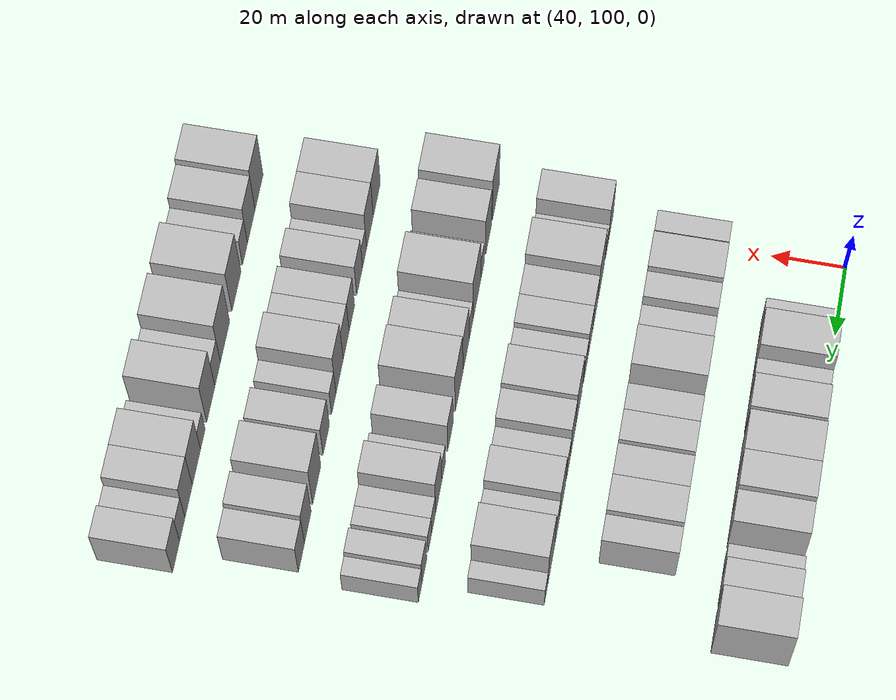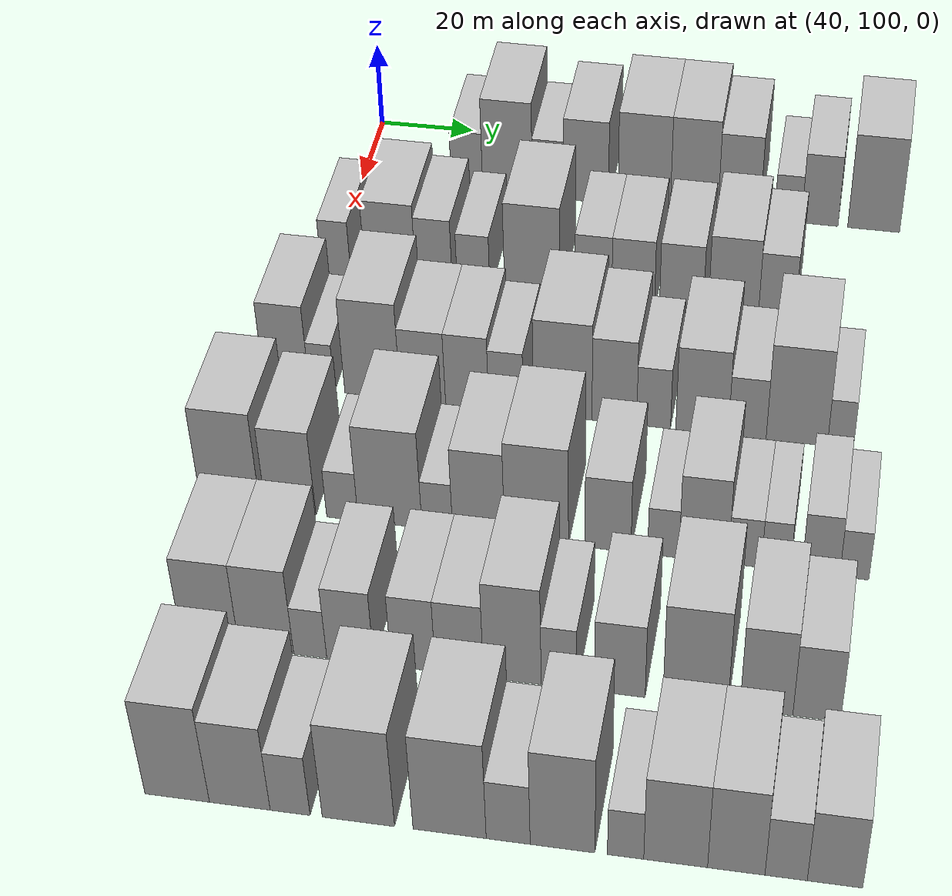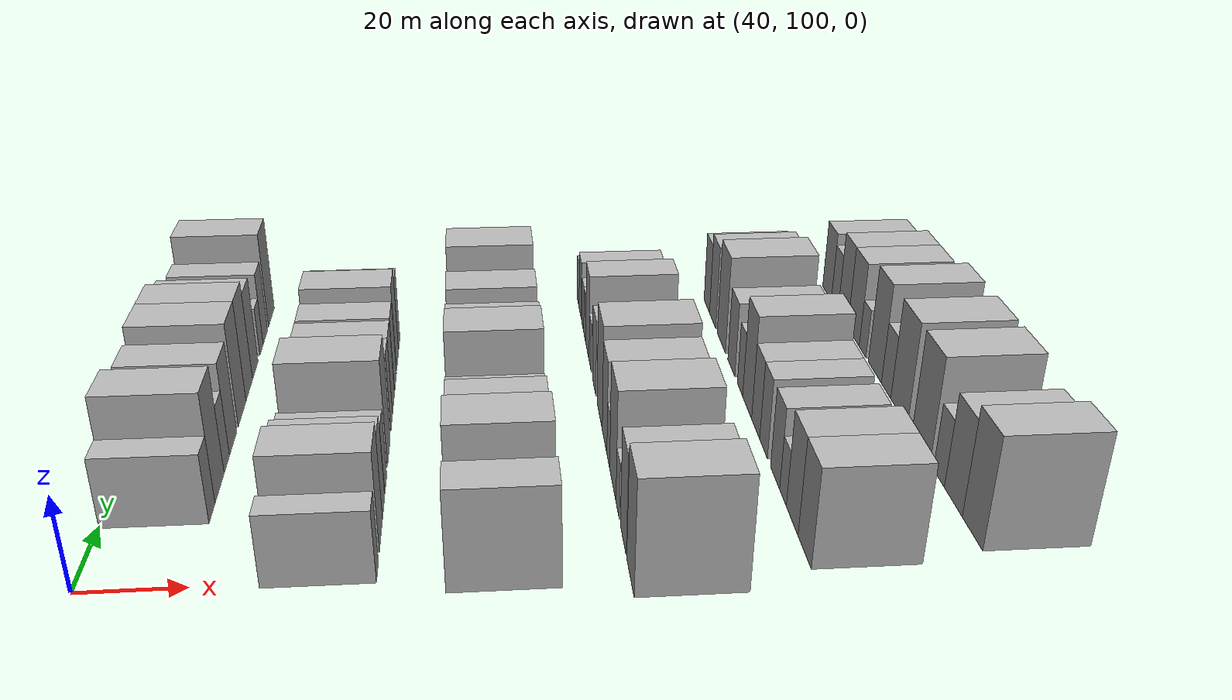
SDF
<sdf version="1.6">
 <world name="default">
  <model name="building_68">
   <static>1</static>
   <pose>50.0000 122.5129 0 0.000000 0.000000 0.000000</pose>
   <link name="link">
    <pose>0 0 7.50 0 0 0</pose>
    <collision name="collision"><geometry><box><size>20.0000 6.6788 15.0000</size></box></geometry></collision>
    <visual name="visual">
     <cast_shadows>0</cast_shadows>
     <geometry><box><size>20.0000 6.6788 15.0000</size></box></geometry>
     <material>
      <script>
       <uri>model://HANNAS_wall/materials/scripts</uri>
       <uri>model://HANNAS_wall/materials/textures</uri>
       <name>vrc/HANNAS_wall</name>
      </script>
     </material>
    </visual>
   </link>
  </model>
  <model name="building_69">
   <static>1</static>
   <pose>50.0000 131.1446 0 0.000000 0.000000 0.000000</pose>
   <link name="link">
    <pose>0 0 12.00 0 0 0</pose>
    <collision name="collision"><geometry><box><size>20.0000 10.5846 24.0000</size></box></geometry></collision>
    <visual name="visual">
     <cast_shadows>0</cast_shadows>
     <geometry><box><size>20.0000 10.5846 24.0000</size></box></geometry>
     <material>
      <script>
       <uri>model://HANNAS_wall/materials/scripts</uri>
       <uri>model://HANNAS_wall/materials/textures</uri>
       <name>vrc/HANNAS_wall</name>
      </script>
     </material>
    </visual>
   </link>
  </model>
  <model name="building_70">
   <static>1</static>
   <pose>50.0000 139.7589 0 0.000000 0.000000 0.000000</pose>
   <link name="link">
    <pose>0 0 7.50 0 0 0</pose>
    <collision name="collision"><geometry><box><size>20.0000 6.6439 15.0000</size></box></geometry></collision>
    <visual name="visual">
     <cast_shadows>0</cast_shadows>
     <geometry><box><size>20.0000 6.6439 15.0000</size></box></geometry>
     <material>
      <script>
       <uri>model://HANNAS_wall/materials/scripts</uri>
       <uri>model://HANNAS_wall/materials/textures</uri>
       <name>vrc/HANNAS_wall</name>
      </script>
     </material>
    </visual>
   </link>
  </model>
  <model name="building_71">
   <static>1</static>
   <pose>50.0000 147.8025 0 0.000000 0.000000 0.000000</pose>
   <link name="link">
    <pose>0 0 10.50 0 0 0</pose>
    <collision name="collision"><geometry><box><size>20.0000 9.4435 21.0000</size></box></geometry></collision>
    <visual name="visual">
     <cast_shadows>0</cast_shadows>
     <geometry><box><size>20.0000 9.4435 21.0000</size></box></geometry>
     <material>
      <script>
       <uri>model://HANNAS_wall/materials/scripts</uri>
       <uri>model://HANNAS_wall/materials/textures</uri>
       <name>vrc/HANNAS_wall</name>
      </script>
     </material>
    </visual>
   </link>
  </model>
  <model name="building_72">
   <static>1</static>
   <pose>50.0000 160.0196 0 0.000000 0.000000 0.000000</pose>
   <link name="link">
    <pose>0 0 12.00 0 0 0</pose>
    <collision name="collision"><geometry><box><size>20.0000 10.9906 24.0000</size></box></geometry></collision>
    <visual name="visual">
     <cast_shadows>0</cast_shadows>
     <geometry><box><size>20.0000 10.9906 24.0000</size></box></geometry>
     <material>
      <script>
       <uri>model://HANNAS_wall/materials/scripts</uri>
       <uri>model://HANNAS_wall/materials/textures</uri>
       <name>vrc/HANNAS_wall</name>
      </script>
     </material>
    </visual>
   </link>
  </model>
  <model name="building_73">
   <static>1</static>
   <pose>50.0000 170.4975 0 0.000000 0.000000 0.000000</pose>
   <link name="link">
    <pose>0 0 12.00 0 0 0</pose>
    <collision name="collision"><geometry><box><size>20.0000 9.9652 24.0000</size></box></geometry></collision>
    <visual name="visual">
     <cast_shadows>0</cast_shadows>
     <geometry><box><size>20.0000 9.9652 24.0000</size></box></geometry>
     <material>
      <script>
       <uri>model://HANNAS_wall/materials/scripts</uri>
       <uri>model://HANNAS_wall/materials/textures</uri>
       <name>vrc/HANNAS_wall</name>
      </script>
     </material>
    </visual>
   </link>
  </model>
  <model name="building_74">
   <static>1</static>
   <pose>50.0000 179.8520 0 0.000000 0.000000 0.000000</pose>
   <link name="link">
    <pose>0 0 10.50 0 0 0</pose>
    <collision name="collision"><geometry><box><size>20.0000 8.7438 21.0000</size></box></geometry></collision>
    <visual name="visual">
     <cast_shadows>0</cast_shadows>
     <geometry><box><size>20.0000 8.7438 21.0000</size></box></geometry>
     <material>
      <script>
       <uri>model://HANNAS_wall/materials/scripts</uri>
       <uri>model://HANNAS_wall/materials/textures</uri>
       <name>vrc/HANNAS_wall</name>
      </script>
     </material>
    </visual>
   </link>
  </model>
  <model name="building_75">
   <static>1</static>
   <pose>50.0000 190.0340 0 0.000000 0.000000 0.000000</pose>
   <link name="link">
    <pose>0 0 6.00 0 0 0</pose>
    <collision name="collision"><geometry><box><size>20.0000 5.6203 12.0000</size></box></geometry></collision>
    <visual name="visual">
     <cast_shadows>0</cast_shadows>
     <geometry><box><size>20.0000 5.6203 12.0000</size></box></geometry>
     <material>
      <script>
       <uri>model://HANNAS_wall/materials/scripts</uri>
       <uri>model://HANNAS_wall/materials/textures</uri>
       <name>vrc/HANNAS_wall</name>
      </script>
     </material>
    </visual>
   </link>
  </model>
  <model name="building_76">
   <static>1</static>
   <pose>50.0000 196.6238 0 0.000000 0.000000 0.000000</pose>
   <link name="link">
    <pose>0 0 9.00 0 0 0</pose>
    <collision name="collision"><geometry><box><size>20.0000 7.5592 18.0000</size></box></geometry></collision>
    <visual name="visual">
     <cast_shadows>0</cast_shadows>
     <geometry><box><size>20.0000 7.5592 18.0000</size></box></geometry>
     <material>
      <script>
       <uri>model://HANNAS_wall/materials/scripts</uri>
       <uri>model://HANNAS_wall/materials/textures</uri>
       <name>vrc/HANNAS_wall</name>
      </script>
     </material>
    </visual>
   </link>
  </model>
  <model name="building_77">
   <static>1</static>
   <pose>50.0000 207.7444 0 0.000000 0.000000 0.000000</pose>
   <link name="link">
    <pose>0 0 12.00 0 0 0</pose>
    <collision name="collision"><geometry><box><size>20.0000 10.6820 24.0000</size></box></geometry></collision>
    <visual name="visual">
     <cast_shadows>0</cast_shadows>
     <geometry><box><size>20.0000 10.6820 24.0000</size></box></geometry>
     <material>
      <script>
       <uri>model://HANNAS_wall/materials/scripts</uri>
       <uri>model://HANNAS_wall/materials/textures</uri>
       <name>vrc/HANNAS_wall</name>
      </script>
     </material>
    </visual>
   </link>
  </model>
  <model name="building_185">
   <static>1</static>
   <pose>82.0000 101.9306 0 0.000000 0.000000 0.000000</pose>
   <link name="link">
    <pose>0 0 7.50 0 0 0</pose>
    <collision name="collision"><geometry><box><size>20.0000 6.0128 15.0000</size></box></geometry></collision>
    <visual name="visual">
     <cast_shadows>0</cast_shadows>
     <geometry><box><size>20.0000 6.0128 15.0000</size></box></geometry>
     <material>
      <script>
       <uri>model://HANNAS_wall/materials/scripts</uri>
       <uri>model://HANNAS_wall/materials/textures</uri>
       <name>vrc/HANNAS_wall</name>
      </script>
     </material>
    </visual>
   </link>
  </model>
  <model name="building_186">
   <static>1</static>
   <pose>82.0000 113.1145 0 0.000000 0.000000 0.000000</pose>
   <link name="link">
    <pose>0 0 10.50 0 0 0</pose>
    <collision name="collision"><geometry><box><size>20.0000 10.3550 21.0000</size></box></geometry></collision>
    <visual name="visual">
     <cast_shadows>0</cast_shadows>
     <geometry><box><size>20.0000 10.3550 21.0000</size></box></geometry>
     <material>
      <script>
       <uri>model://HANNAS_wall/materials/scripts</uri>
       <uri>model://HANNAS_wall/materials/textures</uri>
       <name>vrc/HANNAS_wall</name>
      </script>
     </material>
    </visual>
   </link>
  </model>
  <model name="building_187">
   <static>1</static>
   <pose>82.0000 121.9888 0 0.000000 0.000000 0.000000</pose>
   <link name="link">
    <pose>0 0 9.00 0 0 0</pose>
    <collision name="collision"><geometry><box><size>20.0000 7.3936 18.0000</size></box></geometry></collision>
    <visual name="visual">
     <cast_shadows>0</cast_shadows>
     <geometry><box><size>20.0000 7.3936 18.0000</size></box></geometry>
     <material>
      <script>
       <uri>model://HANNAS_wall/materials/scripts</uri>
       <uri>model://HANNAS_wall/materials/textures</uri>
       <name>vrc/HANNAS_wall</name>
      </script>
     </material>
    </visual>
   </link>
  </model>
  <model name="building_188">
   <static>1</static>
   <pose>82.0000 129.9867 0 0.000000 0.000000 0.000000</pose>
   <link name="link">
    <pose>0 0 7.50 0 0 0</pose>
    <collision name="collision"><geometry><box><size>20.0000 6.6022 15.0000</size></box></geometry></collision>
    <visual name="visual">
     <cast_shadows>0</cast_shadows>
     <geometry><box><size>20.0000 6.6022 15.0000</size></box></geometry>
     <material>
      <script>
       <uri>model://HANNAS_wall/materials/scripts</uri>
       <uri>model://HANNAS_wall/materials/textures</uri>
       <name>vrc/HANNAS_wall</name>
      </script>
     </material>
    </visual>
   </link>
  </model>
  <model name="building_189">
   <static>1</static>
   <pose>82.0000 141.8867 0 0.000000 0.000000 0.000000</pose>
   <link name="link">
    <pose>0 0 12.00 0 0 0</pose>
    <collision name="collision"><geometry><box><size>20.0000 11.1978 24.0000</size></box></geometry></collision>
    <visual name="visual">
     <cast_shadows>0</cast_shadows>
     <geometry><box><size>20.0000 11.1978 24.0000</size></box></geometry>
     <material>
      <script>
       <uri>model://HANNAS_wall/materials/scripts</uri>
       <uri>model://HANNAS_wall/materials/textures</uri>
       <name>vrc/HANNAS_wall</name>
      </script>
     </material>
    </visual>
   </link>
  </model>
  <model name="building_190">
   <static>1</static>
   <pose>82.0000 154.1636 0 0.000000 0.000000 0.000000</pose>
   <link name="link">
    <pose>0 0 9.00 0 0 0</pose>
    <collision name="collision"><geometry><box><size>20.0000 7.3559 18.0000</size></box></geometry></collision>
    <visual name="visual">
     <cast_shadows>0</cast_shadows>
     <geometry><box><size>20.0000 7.3559 18.0000</size></box></geometry>
     <material>
      <script>
       <uri>model://HANNAS_wall/materials/scripts</uri>
       <uri>model://HANNAS_wall/materials/textures</uri>
       <name>vrc/HANNAS_wall</name>
      </script>
     </material>
    </visual>
   </link>
  </model>
  <model name="building_191">
   <static>1</static>
   <pose>82.0000 162.1044 0 0.000000 0.000000 0.000000</pose>
   <link name="link">
    <pose>0 0 9.00 0 0 0</pose>
    <collision name="collision"><geometry><box><size>20.0000 8.5257 18.0000</size></box></geometry></collision>
    <visual name="visual">
     <cast_shadows>0</cast_shadows>
     <geometry><box><size>20.0000 8.5257 18.0000</size></box></geometry>
     <material>
      <script>
       <uri>model://HANNAS_wall/materials/scripts</uri>
       <uri>model://HANNAS_wall/materials/textures</uri>
       <name>vrc/HANNAS_wall</name>
      </script>
     </material>
    </visual>
   </link>
  </model>
  <model name="building_192">
   <static>1</static>
   <pose>82.0000 171.7110 0 0.000000 0.000000 0.000000</pose>
   <link name="link">
    <pose>0 0 9.00 0 0 0</pose>
    <collision name="collision"><geometry><box><size>20.0000 8.6875 18.0000</size></box></geometry></collision>
    <visual name="visual">
     <cast_shadows>0</cast_shadows>
     <geometry><box><size>20.0000 8.6875 18.0000</size></box></geometry>
     <material>
      <script>
       <uri>model://HANNAS_wall/materials/scripts</uri>
       <uri>model://HANNAS_wall/materials/textures</uri>
       <name>vrc/HANNAS_wall</name>
      </script>
     </material>
    </visual>
   </link>
  </model>
  <model name="building_193">
   <static>1</static>
   <pose>82.0000 182.0036 0 0.000000 0.000000 0.000000</pose>
   <link name="link">
    <pose>0 0 10.50 0 0 0</pose>
    <collision name="collision"><geometry><box><size>20.0000 9.8978 21.0000</size></box></geometry></collision>
    <visual name="visual">
     <cast_shadows>0</cast_shadows>
     <geometry><box><size>20.0000 9.8978 21.0000</size></box></geometry>
     <material>
      <script>
       <uri>model://HANNAS_wall/materials/scripts</uri>
       <uri>model://HANNAS_wall/materials/textures</uri>
       <name>vrc/HANNAS_wall</name>
      </script>
     </material>
    </visual>
   </link>
  </model>
  <model name="building_194">
   <static>1</static>
   <pose>82.0000 190.5647 0 0.000000 0.000000 0.000000</pose>
   <link name="link">
    <pose>0 0 9.00 0 0 0</pose>
    <collision name="collision"><geometry><box><size>20.0000 7.2244 18.0000</size></box></geometry></collision>
    <visual name="visual">
     <cast_shadows>0</cast_shadows>
     <geometry><box><size>20.0000 7.2244 18.0000</size></box></geometry>
     <material>
      <script>
       <uri>model://HANNAS_wall/materials/scripts</uri>
       <uri>model://HANNAS_wall/materials/textures</uri>
       <name>vrc/HANNAS_wall</name>
      </script>
     </material>
    </visual>
   </link>
  </model>
  <model name="building_301">
   <static>1</static>
   <pose>114.0000 99.6514 0 0.000000 0.000000 0.000000</pose>
   <link name="link">
    <pose>0 0 10.50 0 0 0</pose>
    <collision name="collision"><geometry><box><size>20.0000 8.8921 21.0000</size></box></geometry></collision>
    <visual name="visual">
     <cast_shadows>0</cast_shadows>
     <geometry><box><size>20.0000 8.8921 21.0000</size></box></geometry>
     <material>
      <script>
       <uri>model://HANNAS_wall/materials/scripts</uri>
       <uri>model://HANNAS_wall/materials/textures</uri>
       <name>vrc/HANNAS_wall</name>
      </script>
     </material>
    </visual>
   </link>
  </model>
  <model name="building_302">
   <static>1</static>
   <pose>114.0000 106.5585 0 0.000000 0.000000 0.000000</pose>
   <link name="link">
    <pose>0 0 6.00 0 0 0</pose>
    <collision name="collision"><geometry><box><size>20.0000 4.9220 12.0000</size></box></geometry></collision>
    <visual name="visual">
     <cast_shadows>0</cast_shadows>
     <geometry><box><size>20.0000 4.9220 12.0000</size></box></geometry>
     <material>
      <script>
       <uri>model://HANNAS_wall/materials/scripts</uri>
       <uri>model://HANNAS_wall/materials/textures</uri>
       <name>vrc/HANNAS_wall</name>
      </script>
     </material>
    </visual>
   </link>
  </model>
  <model name="building_303">
   <static>1</static>
   <pose>114.0000 116.4418 0 0.000000 0.000000 0.000000</pose>
   <link name="link">
    <pose>0 0 12.00 0 0 0</pose>
    <collision name="collision"><geometry><box><size>20.0000 10.8446 24.0000</size></box></geometry></collision>
    <visual name="visual">
     <cast_shadows>0</cast_shadows>
     <geometry><box><size>20.0000 10.8446 24.0000</size></box></geometry>
     <material>
      <script>
       <uri>model://HANNAS_wall/materials/scripts</uri>
       <uri>model://HANNAS_wall/materials/textures</uri>
       <name>vrc/HANNAS_wall</name>
      </script>
     </material>
    </visual>
   </link>
  </model>
  <model name="building_304">
   <static>1</static>
   <pose>114.0000 126.2384 0 0.000000 0.000000 0.000000</pose>
   <link name="link">
    <pose>0 0 9.00 0 0 0</pose>
    <collision name="collision"><geometry><box><size>20.0000 8.7486 18.0000</size></box></geometry></collision>
    <visual name="visual">
     <cast_shadows>0</cast_shadows>
     <geometry><box><size>20.0000 8.7486 18.0000</size></box></geometry>
     <material>
      <script>
       <uri>model://HANNAS_wall/materials/scripts</uri>
       <uri>model://HANNAS_wall/materials/textures</uri>
       <name>vrc/HANNAS_wall</name>
      </script>
     </material>
    </visual>
   </link>
  </model>
  <model name="building_305">
   <static>1</static>
   <pose>114.0000 134.7774 0 0.000000 0.000000 0.000000</pose>
   <link name="link">
    <pose>0 0 9.00 0 0 0</pose>
    <collision name="collision"><geometry><box><size>20.0000 8.3294 18.0000</size></box></geometry></collision>
    <visual name="visual">
     <cast_shadows>0</cast_shadows>
     <geometry><box><size>20.0000 8.3294 18.0000</size></box></geometry>
     <material>
      <script>
       <uri>model://HANNAS_wall/materials/scripts</uri>
       <uri>model://HANNAS_wall/materials/textures</uri>
       <name>vrc/HANNAS_wall</name>
      </script>
     </material>
    </visual>
   </link>
  </model>
  <model name="building_306">
   <static>1</static>
   <pose>114.0000 142.2722 0 0.000000 0.000000 0.000000</pose>
   <link name="link">
    <pose>0 0 7.50 0 0 0</pose>
    <collision name="collision"><geometry><box><size>20.0000 6.6601 15.0000</size></box></geometry></collision>
    <visual name="visual">
     <cast_shadows>0</cast_shadows>
     <geometry><box><size>20.0000 6.6601 15.0000</size></box></geometry>
     <material>
      <script>
       <uri>model://HANNAS_wall/materials/scripts</uri>
       <uri>model://HANNAS_wall/materials/textures</uri>
       <name>vrc/HANNAS_wall</name>
      </script>
     </material>
    </visual>
   </link>
  </model>
  <model name="building_307">
   <static>1</static>
   <pose>114.0000 153.1682 0 0.000000 0.000000 0.000000</pose>
   <link name="link">
    <pose>0 0 12.00 0 0 0</pose>
    <collision name="collision"><geometry><box><size>20.0000 11.1320 24.0000</size></box></geometry></collision>
    <visual name="visual">
     <cast_shadows>0</cast_shadows>
     <geometry><box><size>20.0000 11.1320 24.0000</size></box></geometry>
     <material>
      <script>
       <uri>model://HANNAS_wall/materials/scripts</uri>
       <uri>model://HANNAS_wall/materials/textures</uri>
       <name>vrc/HANNAS_wall</name>
      </script>
     </material>
    </visual>
   </link>
  </model>
  <model name="building_308">
   <static>1</static>
   <pose>114.0000 162.9827 0 0.000000 0.000000 0.000000</pose>
   <link name="link">
    <pose>0 0 10.50 0 0 0</pose>
    <collision name="collision"><geometry><box><size>20.0000 8.4970 21.0000</size></box></geometry></collision>
    <visual name="visual">
     <cast_shadows>0</cast_shadows>
     <geometry><box><size>20.0000 8.4970 21.0000</size></box></geometry>
     <material>
      <script>
       <uri>model://HANNAS_wall/materials/scripts</uri>
       <uri>model://HANNAS_wall/materials/textures</uri>
       <name>vrc/HANNAS_wall</name>
      </script>
     </material>
    </visual>
   </link>
  </model>
  <model name="building_309">
   <static>1</static>
   <pose>114.0000 170.4373 0 0.000000 0.000000 0.000000</pose>
   <link name="link">
    <pose>0 0 7.50 0 0 0</pose>
    <collision name="collision"><geometry><box><size>20.0000 6.4121 15.0000</size></box></geometry></collision>
    <visual name="visual">
     <cast_shadows>0</cast_shadows>
     <geometry><box><size>20.0000 6.4121 15.0000</size></box></geometry>
     <material>
      <script>
       <uri>model://HANNAS_wall/materials/scripts</uri>
       <uri>model://HANNAS_wall/materials/textures</uri>
       <name>vrc/HANNAS_wall</name>
      </script>
     </material>
    </visual>
   </link>
  </model>
  <model name="building_310">
   <static>1</static>
   <pose>114.0000 179.6038 0 0.000000 0.000000 0.000000</pose>
   <link name="link">
    <pose>0 0 10.50 0 0 0</pose>
    <collision name="collision"><geometry><box><size>20.0000 9.9211 21.0000</size></box></geometry></collision>
    <visual name="visual">
     <cast_shadows>0</cast_shadows>
     <geometry><box><size>20.0000 9.9211 21.0000</size></box></geometry>
     <material>
      <script>
       <uri>model://HANNAS_wall/materials/scripts</uri>
       <uri>model://HANNAS_wall/materials/textures</uri>
       <name>vrc/HANNAS_wall</name>
      </script>
     </material>
    </visual>
   </link>
  </model>
  <model name="building_311">
   <static>1</static>
   <pose>114.0000 188.1128 0 0.000000 0.000000 0.000000</pose>
   <link name="link">
    <pose>0 0 7.50 0 0 0</pose>
    <collision name="collision"><geometry><box><size>20.0000 7.0968 15.0000</size></box></geometry></collision>
    <visual name="visual">
     <cast_shadows>0</cast_shadows>
     <geometry><box><size>20.0000 7.0968 15.0000</size></box></geometry>
     <material>
      <script>
       <uri>model://HANNAS_wall/materials/scripts</uri>
       <uri>model://HANNAS_wall/materials/textures</uri>
       <name>vrc/HANNAS_wall</name>
      </script>
     </material>
    </visual>
   </link>
  </model>
  <model name="building_312">
   <static>1</static>
   <pose>114.0000 197.3882 0 0.000000 0.000000 0.000000</pose>
   <link name="link">
    <pose>0 0 12.00 0 0 0</pose>
    <collision name="collision"><geometry><box><size>20.0000 11.4542 24.0000</size></box></geometry></collision>
    <visual name="visual">
     <cast_shadows>0</cast_shadows>
     <geometry><box><size>20.0000 11.4542 24.0000</size></box></geometry>
     <material>
      <script>
       <uri>model://HANNAS_wall/materials/scripts</uri>
       <uri>model://HANNAS_wall/materials/textures</uri>
       <name>vrc/HANNAS_wall</name>
      </script>
     </material>
    </visual>
   </link>
  </model>
  <model name="building_313">
   <static>1</static>
   <pose>114.0000 205.5352 0 0.000000 0.000000 0.000000</pose>
   <link name="link">
    <pose>0 0 6.00 0 0 0</pose>
    <collision name="collision"><geometry><box><size>20.0000 4.8397 12.0000</size></box></geometry></collision>
    <visual name="visual">
     <cast_shadows>0</cast_shadows>
     <geometry><box><size>20.0000 4.8397 12.0000</size></box></geometry>
     <material>
      <script>
       <uri>model://HANNAS_wall/materials/scripts</uri>
       <uri>model://HANNAS_wall/materials/textures</uri>
       <name>vrc/HANNAS_wall</name>
      </script>
     </material>
    </visual>
   </link>
  </model>
  <model name="building_416">
   <static>1</static>
   <pose>146.0000 97.1462 0 0.000000 0.000000 0.000000</pose>
   <link name="link">
    <pose>0 0 12.00 0 0 0</pose>
    <collision name="collision"><geometry><box><size>20.0000 11.1856 24.0000</size></box></geometry></collision>
    <visual name="visual">
     <cast_shadows>0</cast_shadows>
     <geometry><box><size>20.0000 11.1856 24.0000</size></box></geometry>
     <material>
      <script>
       <uri>model://HANNAS_wall/materials/scripts</uri>
       <uri>model://HANNAS_wall/materials/textures</uri>
       <name>vrc/HANNAS_wall</name>
      </script>
     </material>
    </visual>
   </link>
  </model>
  <model name="building_417">
   <static>1</static>
   <pose>146.0000 108.4073 0 0.000000 0.000000 0.000000</pose>
   <link name="link">
    <pose>0 0 10.50 0 0 0</pose>
    <collision name="collision"><geometry><box><size>20.0000 9.3366 21.0000</size></box></geometry></collision>
    <visual name="visual">
     <cast_shadows>0</cast_shadows>
     <geometry><box><size>20.0000 9.3366 21.0000</size></box></geometry>
     <material>
      <script>
       <uri>model://HANNAS_wall/materials/scripts</uri>
       <uri>model://HANNAS_wall/materials/textures</uri>
       <name>vrc/HANNAS_wall</name>
      </script>
     </material>
    </visual>
   </link>
  </model>
  <model name="building_418">
   <static>1</static>
   <pose>146.0000 117.9862 0 0.000000 0.000000 0.000000</pose>
   <link name="link">
    <pose>0 0 6.00 0 0 0</pose>
    <collision name="collision"><geometry><box><size>20.0000 5.8212 12.0000</size></box></geometry></collision>
    <visual name="visual">
     <cast_shadows>0</cast_shadows>
     <geometry><box><size>20.0000 5.8212 12.0000</size></box></geometry>
     <material>
      <script>
       <uri>model://HANNAS_wall/materials/scripts</uri>
       <uri>model://HANNAS_wall/materials/textures</uri>
       <name>vrc/HANNAS_wall</name>
      </script>
     </material>
    </visual>
   </link>
  </model>
  <model name="building_419">
   <static>1</static>
   <pose>146.0000 126.7733 0 0.000000 0.000000 0.000000</pose>
   <link name="link">
    <pose>0 0 12.00 0 0 0</pose>
    <collision name="collision"><geometry><box><size>20.0000 11.7530 24.0000</size></box></geometry></collision>
    <visual name="visual">
     <cast_shadows>0</cast_shadows>
     <geometry><box><size>20.0000 11.7530 24.0000</size></box></geometry>
     <material>
      <script>
       <uri>model://HANNAS_wall/materials/scripts</uri>
       <uri>model://HANNAS_wall/materials/textures</uri>
       <name>vrc/HANNAS_wall</name>
      </script>
     </material>
    </visual>
   </link>
  </model>
  <model name="building_420">
   <static>1</static>
   <pose>146.0000 135.4573 0 0.000000 0.000000 0.000000</pose>
   <link name="link">
    <pose>0 0 6.00 0 0 0</pose>
    <collision name="collision"><geometry><box><size>20.0000 5.6151 12.0000</size></box></geometry></collision>
    <visual name="visual">
     <cast_shadows>0</cast_shadows>
     <geometry><box><size>20.0000 5.6151 12.0000</size></box></geometry>
     <material>
      <script>
       <uri>model://HANNAS_wall/materials/scripts</uri>
       <uri>model://HANNAS_wall/materials/textures</uri>
       <name>vrc/HANNAS_wall</name>
      </script>
     </material>
    </visual>
   </link>
  </model>
  <model name="building_421">
   <static>1</static>
   <pose>146.0000 142.9981 0 0.000000 0.000000 0.000000</pose>
   <link name="link">
    <pose>0 0 10.50 0 0 0</pose>
    <collision name="collision"><geometry><box><size>20.0000 9.4665 21.0000</size></box></geometry></collision>
    <visual name="visual">
     <cast_shadows>0</cast_shadows>
     <geometry><box><size>20.0000 9.4665 21.0000</size></box></geometry>
     <material>
      <script>
       <uri>model://HANNAS_wall/materials/scripts</uri>
       <uri>model://HANNAS_wall/materials/textures</uri>
       <name>vrc/HANNAS_wall</name>
      </script>
     </material>
    </visual>
   </link>
  </model>
  <model name="building_422">
   <static>1</static>
   <pose>146.0000 153.5278 0 0.000000 0.000000 0.000000</pose>
   <link name="link">
    <pose>0 0 12.00 0 0 0</pose>
    <collision name="collision"><geometry><box><size>20.0000 11.5928 24.0000</size></box></geometry></collision>
    <visual name="visual">
     <cast_shadows>0</cast_shadows>
     <geometry><box><size>20.0000 11.5928 24.0000</size></box></geometry>
     <material>
      <script>
       <uri>model://HANNAS_wall/materials/scripts</uri>
       <uri>model://HANNAS_wall/materials/textures</uri>
       <name>vrc/HANNAS_wall</name>
      </script>
     </material>
    </visual>
   </link>
  </model>
  <model name="building_423">
   <static>1</static>
   <pose>146.0000 166.4568 0 0.000000 0.000000 0.000000</pose>
   <link name="link">
    <pose>0 0 9.00 0 0 0</pose>
    <collision name="collision"><geometry><box><size>20.0000 8.2653 18.0000</size></box></geometry></collision>
    <visual name="visual">
     <cast_shadows>0</cast_shadows>
     <geometry><box><size>20.0000 8.2653 18.0000</size></box></geometry>
     <material>
      <script>
       <uri>model://HANNAS_wall/materials/scripts</uri>
       <uri>model://HANNAS_wall/materials/textures</uri>
       <name>vrc/HANNAS_wall</name>
      </script>
     </material>
    </visual>
   </link>
  </model>
  <model name="building_424">
   <static>1</static>
   <pose>146.0000 176.3901 0 0.000000 0.000000 0.000000</pose>
   <link name="link">
    <pose>0 0 6.00 0 0 0</pose>
    <collision name="collision"><geometry><box><size>20.0000 5.6015 12.0000</size></box></geometry></collision>
    <visual name="visual">
     <cast_shadows>0</cast_shadows>
     <geometry><box><size>20.0000 5.6015 12.0000</size></box></geometry>
     <material>
      <script>
       <uri>model://HANNAS_wall/materials/scripts</uri>
       <uri>model://HANNAS_wall/materials/textures</uri>
       <name>vrc/HANNAS_wall</name>
      </script>
     </material>
    </visual>
   </link>
  </model>
  <model name="building_425">
   <static>1</static>
   <pose>146.0000 183.6119 0 0.000000 0.000000 0.000000</pose>
   <link name="link">
    <pose>0 0 10.50 0 0 0</pose>
    <collision name="collision"><geometry><box><size>20.0000 8.8421 21.0000</size></box></geometry></collision>
    <visual name="visual">
     <cast_shadows>0</cast_shadows>
     <geometry><box><size>20.0000 8.8421 21.0000</size></box></geometry>
     <material>
      <script>
       <uri>model://HANNAS_wall/materials/scripts</uri>
       <uri>model://HANNAS_wall/materials/textures</uri>
       <name>vrc/HANNAS_wall</name>
      </script>
     </material>
    </visual>
   </link>
  </model>
  <model name="building_426">
   <static>1</static>
   <pose>146.0000 190.9628 0 0.000000 0.000000 0.000000</pose>
   <link name="link">
    <pose>0 0 6.00 0 0 0</pose>
    <collision name="collision"><geometry><box><size>20.0000 5.8597 12.0000</size></box></geometry></collision>
    <visual name="visual">
     <cast_shadows>0</cast_shadows>
     <geometry><box><size>20.0000 5.8597 12.0000</size></box></geometry>
     <material>
      <script>
       <uri>model://HANNAS_wall/materials/scripts</uri>
       <uri>model://HANNAS_wall/materials/textures</uri>
       <name>vrc/HANNAS_wall</name>
      </script>
     </material>
    </visual>
   </link>
  </model>
  <model name="building_427">
   <static>1</static>
   <pose>146.0000 196.4624 0 0.000000 0.000000 0.000000</pose>
   <link name="link">
    <pose>0 0 6.00 0 0 0</pose>
    <collision name="collision"><geometry><box><size>20.0000 5.1393 12.0000</size></box></geometry></collision>
    <visual name="visual">
     <cast_shadows>0</cast_shadows>
     <geometry><box><size>20.0000 5.1393 12.0000</size></box></geometry>
     <material>
      <script>
       <uri>model://HANNAS_wall/materials/scripts</uri>
       <uri>model://HANNAS_wall/materials/textures</uri>
       <name>vrc/HANNAS_wall</name>
      </script>
     </material>
    </visual>
   </link>
  </model>
  <model name="building_428">
   <static>1</static>
   <pose>146.0000 204.3752 0 0.000000 0.000000 0.000000</pose>
   <link name="link">
    <pose>0 0 7.50 0 0 0</pose>
    <collision name="collision"><geometry><box><size>20.0000 6.6863 15.0000</size></box></geometry></collision>
    <visual name="visual">
     <cast_shadows>0</cast_shadows>
     <geometry><box><size>20.0000 6.6863 15.0000</size></box></geometry>
     <material>
      <script>
       <uri>model://HANNAS_wall/materials/scripts</uri>
       <uri>model://HANNAS_wall/materials/textures</uri>
       <name>vrc/HANNAS_wall</name>
      </script>
     </material>
    </visual>
   </link>
  </model>
  <model name="building_429">
   <static>1</static>
   <pose>146.0000 210.2912 0 0.000000 0.000000 0.000000</pose>
   <link name="link">
    <pose>0 0 6.00 0 0 0</pose>
    <collision name="collision"><geometry><box><size>20.0000 5.1457 12.0000</size></box></geometry></collision>
    <visual name="visual">
     <cast_shadows>0</cast_shadows>
     <geometry><box><size>20.0000 5.1457 12.0000</size></box></geometry>
     <material>
      <script>
       <uri>model://HANNAS_wall/materials/scripts</uri>
       <uri>model://HANNAS_wall/materials/textures</uri>
       <name>vrc/HANNAS_wall</name>
      </script>
     </material>
    </visual>
   </link>
  </model>
  <model name="building_539">
   <static>1</static>
   <pose>178.0000 102.2089 0 0.000000 0.000000 0.000000</pose>
   <link name="link">
    <pose>0 0 10.50 0 0 0</pose>
    <collision name="collision"><geometry><box><size>20.0000 10.1452 21.0000</size></box></geometry></collision>
    <visual name="visual">
     <cast_shadows>0</cast_shadows>
     <geometry><box><size>20.0000 10.1452 21.0000</size></box></geometry>
     <material>
      <script>
       <uri>model://HANNAS_wall/materials/scripts</uri>
       <uri>model://HANNAS_wall/materials/textures</uri>
       <name>vrc/HANNAS_wall</name>
      </script>
     </material>
    </visual>
   </link>
  </model>
  <model name="building_540">
   <static>1</static>
   <pose>178.0000 112.0892 0 0.000000 0.000000 0.000000</pose>
   <link name="link">
    <pose>0 0 10.50 0 0 0</pose>
    <collision name="collision"><geometry><box><size>20.0000 9.6154 21.0000</size></box></geometry></collision>
    <visual name="visual">
     <cast_shadows>0</cast_shadows>
     <geometry><box><size>20.0000 9.6154 21.0000</size></box></geometry>
     <material>
      <script>
       <uri>model://HANNAS_wall/materials/scripts</uri>
       <uri>model://HANNAS_wall/materials/textures</uri>
       <name>vrc/HANNAS_wall</name>
      </script>
     </material>
    </visual>
   </link>
  </model>
  <model name="building_541">
   <static>1</static>
   <pose>178.0000 119.7937 0 0.000000 0.000000 0.000000</pose>
   <link name="link">
    <pose>0 0 6.00 0 0 0</pose>
    <collision name="collision"><geometry><box><size>20.0000 5.7937 12.0000</size></box></geometry></collision>
    <visual name="visual">
     <cast_shadows>0</cast_shadows>
     <geometry><box><size>20.0000 5.7937 12.0000</size></box></geometry>
     <material>
      <script>
       <uri>model://HANNAS_wall/materials/scripts</uri>
       <uri>model://HANNAS_wall/materials/textures</uri>
       <name>vrc/HANNAS_wall</name>
      </script>
     </material>
    </visual>
   </link>
  </model>
  <model name="building_542">
   <static>1</static>
   <pose>178.0000 126.8068 0 0.000000 0.000000 0.000000</pose>
   <link name="link">
    <pose>0 0 9.00 0 0 0</pose>
    <collision name="collision"><geometry><box><size>20.0000 8.2324 18.0000</size></box></geometry></collision>
    <visual name="visual">
     <cast_shadows>0</cast_shadows>
     <geometry><box><size>20.0000 8.2324 18.0000</size></box></geometry>
     <material>
      <script>
       <uri>model://HANNAS_wall/materials/scripts</uri>
       <uri>model://HANNAS_wall/materials/textures</uri>
       <name>vrc/HANNAS_wall</name>
      </script>
     </material>
    </visual>
   </link>
  </model>
  <model name="building_543">
   <static>1</static>
   <pose>178.0000 137.7557 0 0.000000 0.000000 0.000000</pose>
   <link name="link">
    <pose>0 0 9.00 0 0 0</pose>
    <collision name="collision"><geometry><box><size>20.0000 7.6655 18.0000</size></box></geometry></collision>
    <visual name="visual">
     <cast_shadows>0</cast_shadows>
     <geometry><box><size>20.0000 7.6655 18.0000</size></box></geometry>
     <material>
      <script>
       <uri>model://HANNAS_wall/materials/scripts</uri>
       <uri>model://HANNAS_wall/materials/textures</uri>
       <name>vrc/HANNAS_wall</name>
      </script>
     </material>
    </visual>
   </link>
  </model>
  <model name="building_544">
   <static>1</static>
   <pose>178.0000 145.7223 0 0.000000 0.000000 0.000000</pose>
   <link name="link">
    <pose>0 0 9.00 0 0 0</pose>
    <collision name="collision"><geometry><box><size>20.0000 8.2676 18.0000</size></box></geometry></collision>
    <visual name="visual">
     <cast_shadows>0</cast_shadows>
     <geometry><box><size>20.0000 8.2676 18.0000</size></box></geometry>
     <material>
      <script>
       <uri>model://HANNAS_wall/materials/scripts</uri>
       <uri>model://HANNAS_wall/materials/textures</uri>
       <name>vrc/HANNAS_wall</name>
      </script>
     </material>
    </visual>
   </link>
  </model>
  <model name="building_545">
   <static>1</static>
   <pose>178.0000 154.8070 0 0.000000 0.000000 0.000000</pose>
   <link name="link">
    <pose>0 0 12.00 0 0 0</pose>
    <collision name="collision"><geometry><box><size>20.0000 9.9019 24.0000</size></box></geometry></collision>
    <visual name="visual">
     <cast_shadows>0</cast_shadows>
     <geometry><box><size>20.0000 9.9019 24.0000</size></box></geometry>
     <material>
      <script>
       <uri>model://HANNAS_wall/materials/scripts</uri>
       <uri>model://HANNAS_wall/materials/textures</uri>
       <name>vrc/HANNAS_wall</name>
      </script>
     </material>
    </visual>
   </link>
  </model>
  <model name="building_546">
   <static>1</static>
   <pose>178.0000 162.7837 0 0.000000 0.000000 0.000000</pose>
   <link name="link">
    <pose>0 0 7.50 0 0 0</pose>
    <collision name="collision"><geometry><box><size>20.0000 6.0514 15.0000</size></box></geometry></collision>
    <visual name="visual">
     <cast_shadows>0</cast_shadows>
     <geometry><box><size>20.0000 6.0514 15.0000</size></box></geometry>
     <material>
      <script>
       <uri>model://HANNAS_wall/materials/scripts</uri>
       <uri>model://HANNAS_wall/materials/textures</uri>
       <name>vrc/HANNAS_wall</name>
      </script>
     </material>
    </visual>
   </link>
  </model>
  <model name="building_547">
   <static>1</static>
   <pose>178.0000 173.1240 0 0.000000 0.000000 0.000000</pose>
   <link name="link">
    <pose>0 0 9.00 0 0 0</pose>
    <collision name="collision"><geometry><box><size>20.0000 8.6291 18.0000</size></box></geometry></collision>
    <visual name="visual">
     <cast_shadows>0</cast_shadows>
     <geometry><box><size>20.0000 8.6291 18.0000</size></box></geometry>
     <material>
      <script>
       <uri>model://HANNAS_wall/materials/scripts</uri>
       <uri>model://HANNAS_wall/materials/textures</uri>
       <name>vrc/HANNAS_wall</name>
      </script>
     </material>
    </visual>
   </link>
  </model>
  <model name="building_548">
   <static>1</static>
   <pose>178.0000 185.9201 0 0.000000 0.000000 0.000000</pose>
   <link name="link">
    <pose>0 0 12.00 0 0 0</pose>
    <collision name="collision"><geometry><box><size>20.0000 10.9631 24.0000</size></box></geometry></collision>
    <visual name="visual">
     <cast_shadows>0</cast_shadows>
     <geometry><box><size>20.0000 10.9631 24.0000</size></box></geometry>
     <material>
      <script>
       <uri>model://HANNAS_wall/materials/scripts</uri>
       <uri>model://HANNAS_wall/materials/textures</uri>
       <name>vrc/HANNAS_wall</name>
      </script>
     </material>
    </visual>
   </link>
  </model>
  <model name="building_549">
   <static>1</static>
   <pose>178.0000 197.8284 0 0.000000 0.000000 0.000000</pose>
   <link name="link">
    <pose>0 0 10.50 0 0 0</pose>
    <collision name="collision"><geometry><box><size>20.0000 8.8535 21.0000</size></box></geometry></collision>
    <visual name="visual">
     <cast_shadows>0</cast_shadows>
     <geometry><box><size>20.0000 8.8535 21.0000</size></box></geometry>
     <material>
      <script>
       <uri>model://HANNAS_wall/materials/scripts</uri>
       <uri>model://HANNAS_wall/materials/textures</uri>
       <name>vrc/HANNAS_wall</name>
      </script>
     </material>
    </visual>
   </link>
  </model>
  <model name="building_550">
   <static>1</static>
   <pose>178.0000 206.2359 0 0.000000 0.000000 0.000000</pose>
   <link name="link">
    <pose>0 0 9.00 0 0 0</pose>
    <collision name="collision"><geometry><box><size>20.0000 7.9617 18.0000</size></box></geometry></collision>
    <visual name="visual">
     <cast_shadows>0</cast_shadows>
     <geometry><box><size>20.0000 7.9617 18.0000</size></box></geometry>
     <material>
      <script>
       <uri>model://HANNAS_wall/materials/scripts</uri>
       <uri>model://HANNAS_wall/materials/textures</uri>
       <name>vrc/HANNAS_wall</name>
      </script>
     </material>
    </visual>
   </link>
  </model>
  <model name="building_662">
   <static>1</static>
   <pose>210.0000 105.5332 0 0.000000 0.000000 0.000000</pose>
   <link name="link">
    <pose>0 0 12.00 0 0 0</pose>
    <collision name="collision"><geometry><box><size>20.0000 10.7350 24.0000</size></box></geometry></collision>
    <visual name="visual">
     <cast_shadows>0</cast_shadows>
     <geometry><box><size>20.0000 10.7350 24.0000</size></box></geometry>
     <material>
      <script>
       <uri>model://HANNAS_wall/materials/scripts</uri>
       <uri>model://HANNAS_wall/materials/textures</uri>
       <name>vrc/HANNAS_wall</name>
      </script>
     </material>
    </visual>
   </link>
  </model>
  <model name="building_663">
   <static>1</static>
   <pose>210.0000 115.9354 0 0.000000 0.000000 0.000000</pose>
   <link name="link">
    <pose>0 0 10.50 0 0 0</pose>
    <collision name="collision"><geometry><box><size>20.0000 10.0694 21.0000</size></box></geometry></collision>
    <visual name="visual">
     <cast_shadows>0</cast_shadows>
     <geometry><box><size>20.0000 10.0694 21.0000</size></box></geometry>
     <material>
      <script>
       <uri>model://HANNAS_wall/materials/scripts</uri>
       <uri>model://HANNAS_wall/materials/textures</uri>
       <name>vrc/HANNAS_wall</name>
      </script>
     </material>
    </visual>
   </link>
  </model>
  <model name="building_664">
   <static>1</static>
   <pose>210.0000 124.2579 0 0.000000 0.000000 0.000000</pose>
   <link name="link">
    <pose>0 0 7.50 0 0 0</pose>
    <collision name="collision"><geometry><box><size>20.0000 6.5757 15.0000</size></box></geometry></collision>
    <visual name="visual">
     <cast_shadows>0</cast_shadows>
     <geometry><box><size>20.0000 6.5757 15.0000</size></box></geometry>
     <material>
      <script>
       <uri>model://HANNAS_wall/materials/scripts</uri>
       <uri>model://HANNAS_wall/materials/textures</uri>
       <name>vrc/HANNAS_wall</name>
      </script>
     </material>
    </visual>
   </link>
  </model>
  <model name="building_665">
   <static>1</static>
   <pose>210.0000 135.4668 0 0.000000 0.000000 0.000000</pose>
   <link name="link">
    <pose>0 0 12.00 0 0 0</pose>
    <collision name="collision"><geometry><box><size>20.0000 11.8420 24.0000</size></box></geometry></collision>
    <visual name="visual">
     <cast_shadows>0</cast_shadows>
     <geometry><box><size>20.0000 11.8420 24.0000</size></box></geometry>
     <material>
      <script>
       <uri>model://HANNAS_wall/materials/scripts</uri>
       <uri>model://HANNAS_wall/materials/textures</uri>
       <name>vrc/HANNAS_wall</name>
      </script>
     </material>
    </visual>
   </link>
  </model>
  <model name="building_666">
   <static>1</static>
   <pose>210.0000 150.3205 0 0.000000 0.000000 0.000000</pose>
   <link name="link">
    <pose>0 0 12.00 0 0 0</pose>
    <collision name="collision"><geometry><box><size>20.0000 11.8654 24.0000</size></box></geometry></collision>
    <visual name="visual">
     <cast_shadows>0</cast_shadows>
     <geometry><box><size>20.0000 11.8654 24.0000</size></box></geometry>
     <material>
      <script>
       <uri>model://HANNAS_wall/materials/scripts</uri>
       <uri>model://HANNAS_wall/materials/textures</uri>
       <name>vrc/HANNAS_wall</name>
      </script>
     </material>
    </visual>
   </link>
  </model>
  <model name="building_667">
   <static>1</static>
   <pose>210.0000 159.7991 0 0.000000 0.000000 0.000000</pose>
   <link name="link">
    <pose>0 0 7.50 0 0 0</pose>
    <collision name="collision"><geometry><box><size>20.0000 7.0918 15.0000</size></box></geometry></collision>
    <visual name="visual">
     <cast_shadows>0</cast_shadows>
     <geometry><box><size>20.0000 7.0918 15.0000</size></box></geometry>
     <material>
      <script>
       <uri>model://HANNAS_wall/materials/scripts</uri>
       <uri>model://HANNAS_wall/materials/textures</uri>
       <name>vrc/HANNAS_wall</name>
      </script>
     </material>
    </visual>
   </link>
  </model>
  <model name="building_668">
   <static>1</static>
   <pose>210.0000 168.5376 0 0.000000 0.000000 0.000000</pose>
   <link name="link">
    <pose>0 0 12.00 0 0 0</pose>
    <collision name="collision"><geometry><box><size>20.0000 10.3851 24.0000</size></box></geometry></collision>
    <visual name="visual">
     <cast_shadows>0</cast_shadows>
     <geometry><box><size>20.0000 10.3851 24.0000</size></box></geometry>
     <material>
      <script>
       <uri>model://HANNAS_wall/materials/scripts</uri>
       <uri>model://HANNAS_wall/materials/textures</uri>
       <name>vrc/HANNAS_wall</name>
      </script>
     </material>
    </visual>
   </link>
  </model>
  <model name="building_669">
   <static>1</static>
   <pose>210.0000 178.6217 0 0.000000 0.000000 0.000000</pose>
   <link name="link">
    <pose>0 0 6.00 0 0 0</pose>
    <collision name="collision"><geometry><box><size>20.0000 5.7832 12.0000</size></box></geometry></collision>
    <visual name="visual">
     <cast_shadows>0</cast_shadows>
     <geometry><box><size>20.0000 5.7832 12.0000</size></box></geometry>
     <material>
      <script>
       <uri>model://HANNAS_wall/materials/scripts</uri>
       <uri>model://HANNAS_wall/materials/textures</uri>
       <name>vrc/HANNAS_wall</name>
      </script>
     </material>
    </visual>
   </link>
  </model>
  <model name="building_670">
   <static>1</static>
   <pose>210.0000 186.5789 0 0.000000 0.000000 0.000000</pose>
   <link name="link">
    <pose>0 0 10.50 0 0 0</pose>
    <collision name="collision"><geometry><box><size>20.0000 10.1311 21.0000</size></box></geometry></collision>
    <visual name="visual">
     <cast_shadows>0</cast_shadows>
     <geometry><box><size>20.0000 10.1311 21.0000</size></box></geometry>
     <material>
      <script>
       <uri>model://HANNAS_wall/materials/scripts</uri>
       <uri>model://HANNAS_wall/materials/textures</uri>
       <name>vrc/HANNAS_wall</name>
      </script>
     </material>
    </visual>
   </link>
  </model>
  <model name="building_671">
   <static>1</static>
   <pose>210.0000 196.1694 0 0.000000 0.000000 0.000000</pose>
   <link name="link">
    <pose>0 0 10.50 0 0 0</pose>
    <collision name="collision"><geometry><box><size>20.0000 9.0499 21.0000</size></box></geometry></collision>
    <visual name="visual">
     <cast_shadows>0</cast_shadows>
     <geometry><box><size>20.0000 9.0499 21.0000</size></box></geometry>
     <material>
      <script>
       <uri>model://HANNAS_wall/materials/scripts</uri>
       <uri>model://HANNAS_wall/materials/textures</uri>
       <name>vrc/HANNAS_wall</name>
      </script>
     </material>
    </visual>
   </link>
  </model>
  <model name="building_672">
   <static>1</static>
   <pose>210.0000 204.0141 0 0.000000 0.000000 0.000000</pose>
   <link name="link">
    <pose>0 0 7.50 0 0 0</pose>
    <collision name="collision"><geometry><box><size>20.0000 6.6395 15.0000</size></box></geometry></collision>
    <visual name="visual">
     <cast_shadows>0</cast_shadows>
     <geometry><box><size>20.0000 6.6395 15.0000</size></box></geometry>
     <material>
      <script>
       <uri>model://HANNAS_wall/materials/scripts</uri>
       <uri>model://HANNAS_wall/materials/textures</uri>
       <name>vrc/HANNAS_wall</name>
      </script>
     </material>
    </visual>
   </link>
  </model>
  <model name="building_673">
   <static>1</static>
   <pose>210.0000 211.6678 0 0.000000 0.000000 0.000000</pose>
   <link name="link">
    <pose>0 0 9.00 0 0 0</pose>
    <collision name="collision"><geometry><box><size>20.0000 8.6679 18.0000</size></box></geometry></collision>
    <visual name="visual">
     <cast_shadows>0</cast_shadows>
     <geometry><box><size>20.0000 8.6679 18.0000</size></box></geometry>
     <material>
      <script>
       <uri>model://HANNAS_wall/materials/scripts</uri>
       <uri>model://HANNAS_wall/materials/textures</uri>
       <name>vrc/HANNAS_wall</name>
      </script>
     </material>
    </visual>
   </link>
  </model>
 </world>
</sdf>
